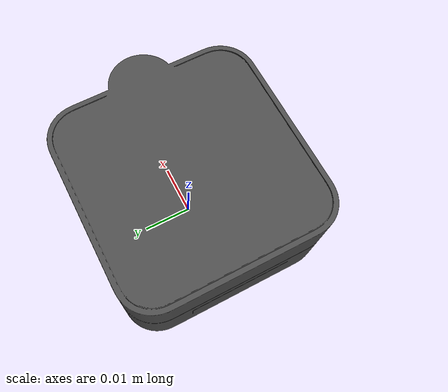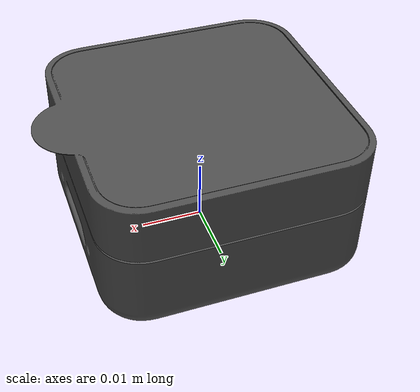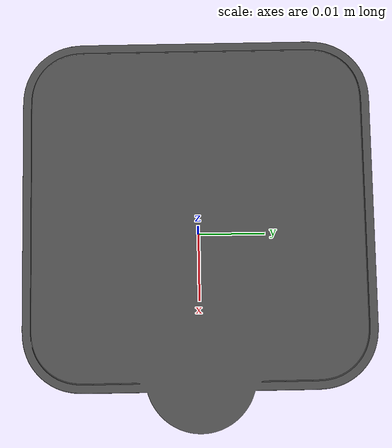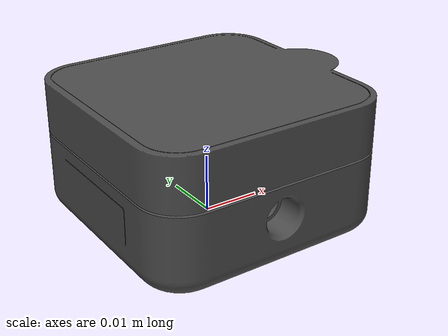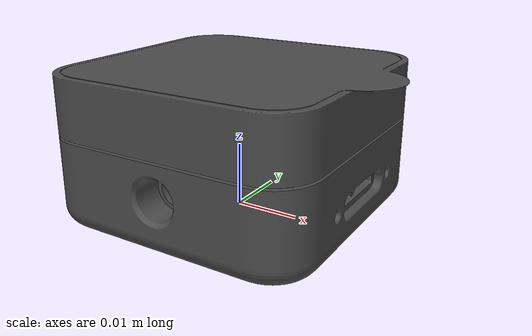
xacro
<?xml version="1.0"?>
<robot xmlns:xacro="http://www.ros.org/wiki/xacro" name="realsense">

  <!-- Define properties -->
  <xacro:property name="mesh_scale" value="0.001 0.001 0.001" /> <!-- Adjust if mm->m conversion needed -->

  <material name="white">
       <color rgba="1 1 1 1"/>
  </material>

  <link name="rs_link">
    <visual>
      <geometry>
        <mesh filename="package://nakit_visualisation/meshes/D405.dae"/>
      </geometry>
    </visual>
  </link>
</robot>
